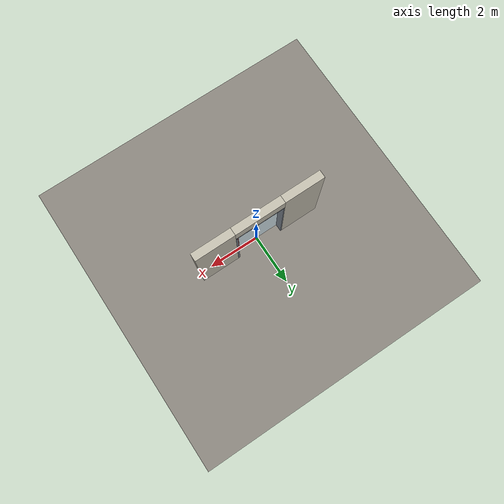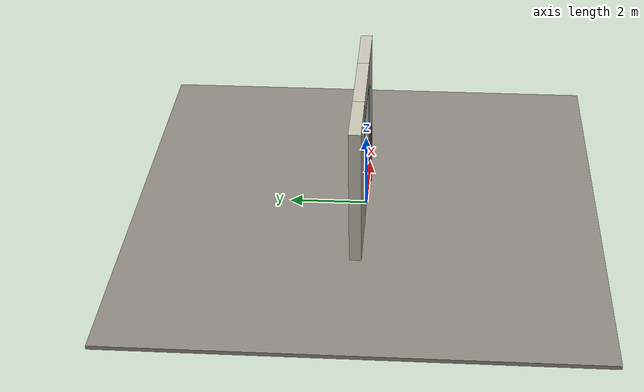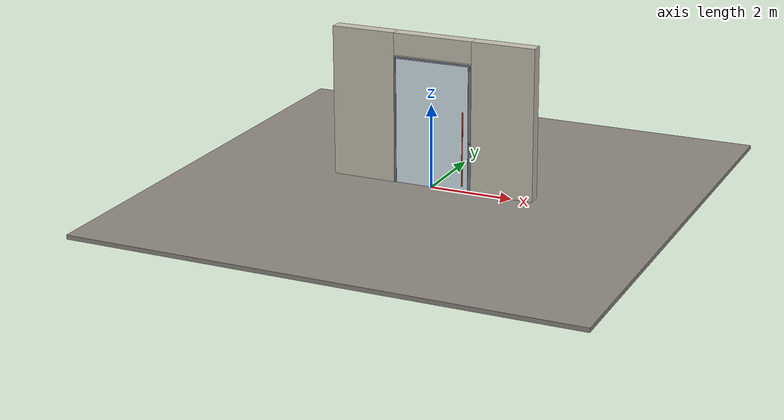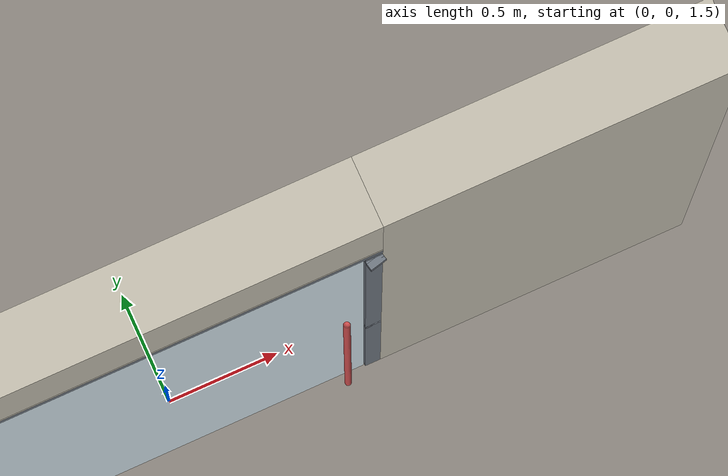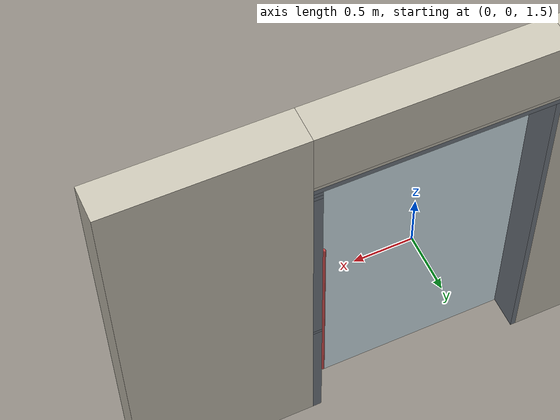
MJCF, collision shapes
<?xml version="1.0" ?>
<mujoco model="db0817_pivot_minimal">
  <compiler angle="radian" meshdir="../../hardware" texturedir="../../textures" autolimits="true" inertiafromgeom="false"/>
  <option timestep="0.002" integrator="implicitfast" cone="elliptic" impratio="10" noslip_iterations="3">
    <flag multiccd="enable"/>
  </option>
  <size memory="16M"/>
  <default>
    <geom condim="4" solref="0.005 1" solimp="0.95 0.99 0.001"/>
    <joint solreflimit="0.005 1" solimplimit="0.95 0.99 0.001"/>
    <tendon solreflimit="0.005 1"/>
    <equality solref="0.002 1"/>
  </default>
  <visual>
    <headlight ambient="0.4 0.4 0.4" diffuse="0.7 0.7 0.7" specular="0.2 0.2 0.2"/>
    <quality shadowsize="4096"/>
    <map znear="0.01" zfar="60"/>
  </visual>
  <asset>
    <mesh name="pull_897e207f65" file="pull_897e207f65.obj"/>
    <material name="mat_floor" rgba="0.55 0.53 0.5 1" specular="0.2" shininess="0.15" reflectance="0"/>
    <material name="mat_wall" rgba="0.78 0.76 0.7 1" specular="0.2" shininess="0.1" reflectance="0"/>
    <material name="mat_leaf" rgba="0.85 0.92 0.95 0.25" specular="0.2" shininess="0.95" reflectance="0.1"/>
    <material name="mat_glass_leaf" rgba="0.85 0.92 0.95 0.25" specular="0.2" shininess="0.95" reflectance="0.1"/>
    <material name="mat_patch" rgba="0.75 0.76 0.77 1" specular="0.8" shininess="0.65" reflectance="0.4"/>
    <material name="mat_hinge" rgba="0.65 0.66 0.68 1" specular="0.74" shininess="0.5" reflectance="0.36"/>
    <material name="mat_op_stainless" rgba="0.75 0.76 0.77 1" specular="0.8" shininess="0.65" reflectance="0.4"/>
    <material name="mat_bolt" rgba="0.75 0.76 0.77 1" specular="0.8" shininess="0.65" reflectance="0.4"/>
    <material name="mat_deadbolt" rgba="0.85 0.66 0.3 1" specular="0.8" shininess="0.75" reflectance="0.4"/>
    <material name="mat_frame" rgba="0.45 0.48 0.52 1" specular="0.32" shininess="0.6" reflectance="0.08"/>
    <material name="mat_closer" rgba="0.75 0.76 0.77 1" specular="0.8" shininess="0.65" reflectance="0.4"/>
    <texture name="skybox" type="skybox" builtin="gradient" rgb1="0.6 0.7 0.85" rgb2="0.9 0.92 0.95" width="256" height="256"/>
  </asset>
  <worldbody>
    <light name="sun" pos="1.5 -2.5 4" dir="-0.3 0.5 -0.8" directional="true" diffuse="0.8 0.8 0.8" specular="0.3 0.3 0.3" castshadow="true"/>
    <light name="fill" pos="-1.5 2.5 3" dir="0.3 -0.5 -0.7" directional="true" diffuse="0.35 0.35 0.4" castshadow="false"/>
    <camera name="robot_view" pos="0 -3.31175 2.47165" xyaxes="1 0 0 0 0.26963 0.962964" fovy="52"/>
    <camera name="far_view" pos="0 3.58575 2.47165" xyaxes="-1 0 0 0 -0.26963 0.962964" fovy="52"/>
    <camera name="iso" pos="2.62105 -2.75995 3.02345" xyaxes="0.741536 0.670913 0 -0.242917 0.268487 0.932151" fovy="46"/>
    <camera name="detail_handle" pos="0.975 -0.871 1.33" xyaxes="0.97561 0.219512 0 -0.070934 0.315262 0.94635" fovy="38"/>
    <geom name="floor" type="box" size="6 6 0.05" pos="0 0 -0.05" material="mat_floor" group="0" contype="1" conaffinity="1" friction="0.8 0.005 0.0001" density="2400"/>
    <geom name="wall_left" type="box" size="0.7745 0.15 1.806" pos="-1.7255 0.137 1.806" material="mat_wall" group="0" contype="1" conaffinity="1" friction="0.6 0.005 0.0001" density="800"/>
    <geom name="wall_right" type="box" size="0.7595 0.15 1.806" pos="1.7405 0.137 1.806" material="mat_wall" group="0" contype="1" conaffinity="1" friction="0.6 0.005 0.0001" density="800"/>
    <geom name="wall_header" type="box" size="0.966 0.15 0.2625" pos="0.015 0.137 3.3495" material="mat_wall" group="0" contype="1" conaffinity="1" friction="0.6 0.005 0.0001" density="800"/>
    <geom name="jamb_hinge" type="box" size="0.0225 0.15 1.506" pos="-0.9285 0.137 1.506" material="mat_frame" group="0" contype="1" conaffinity="1" friction="0.6 0.005 0.0001" density="300"/>
    <geom name="strike_1190_wall_n" type="box" size="0.0375 0.13875 0.0155" pos="0.9435 0.14825 1.19" material="mat_frame" group="0" contype="1" conaffinity="1" friction="0.6 0.005 0.0001" density="300"/>
    <geom name="strike_1190_wall_p" type="box" size="0.0157 0.003 0.0155" pos="0.9217 -0.0125 1.19" material="mat_frame" group="0" contype="1" conaffinity="1" friction="0.6 0.005 0.0001" density="300"/>
    <geom name="strike_1190_back" type="box" size="0.0228 0.0095 0.0155" pos="0.9582 0 1.19" material="mat_frame" group="0" contype="1" conaffinity="1" friction="0.6 0.005 0.0001" density="300"/>
    <geom name="strike_2958_wall_n" type="box" size="0.0375 0.13975 0.019" pos="0.9435 0.14725 2.958" material="mat_frame" group="0" contype="1" conaffinity="1" friction="0.6 0.005 0.0001" density="300"/>
    <geom name="strike_2958_wall_p" type="box" size="0.0375 0.008 0.019" pos="0.9435 -0.0155 2.958" material="mat_frame" group="0" contype="1" conaffinity="1" friction="0.6 0.005 0.0001" density="300"/>
    <geom name="strike_2958_ramp" type="box" size="0.0375 0.015403 0.019" pos="0.946019 -0.029979 2.958" quat="0.993439 0 0 0.114365" material="mat_frame" group="0" contype="1" conaffinity="1" friction="0.12 0.005 0.0001" density="300"/>
    <geom name="strike_2958_ramp_n" type="box" size="0.0375 0.015403 0.019" pos="0.946019 0.017979 2.958" quat="0.993439 0 0 -0.114365" material="mat_frame" group="0" contype="1" conaffinity="1" friction="0.12 0.005 0.0001" density="300"/>
    <geom name="strike_2958_back" type="box" size="0.0325 0.0075 0.019" pos="0.9485 0 2.958" material="mat_frame" group="0" contype="1" conaffinity="1" friction="0.6 0.005 0.0001" density="300"/>
    <geom name="jamb_strike_0" type="box" size="0.0375 0.15 0.58725" pos="0.9435 0.137 0.58725" material="mat_frame" group="0" contype="1" conaffinity="1" friction="0.6 0.005 0.0001" density="300"/>
    <geom name="jamb_strike_1" type="box" size="0.0375 0.15 0.86675" pos="0.9435 0.137 2.07225" material="mat_frame" group="0" contype="1" conaffinity="1" friction="0.6 0.005 0.0001" density="300"/>
    <geom name="jamb_strike_2" type="box" size="0.0375 0.15 0.0175" pos="0.9435 0.137 2.9945" material="mat_frame" group="0" contype="1" conaffinity="1" friction="0.6 0.005 0.0001" density="300"/>
    <geom name="jamb_head" type="box" size="0.966 0.15 0.0225" pos="0.015 0.137 3.0345" material="mat_frame" group="0" contype="1" conaffinity="1" friction="0.6 0.005 0.0001" density="300"/>
    <geom name="head_stud" type="box" size="0.966 0.15 0.015" pos="0.015 0.137 3.072" material="mat_wall" group="0" contype="1" conaffinity="1" friction="0.6 0.005 0.0001" density="500"/>
    <site name="approach_point" pos="0 -1.5 0" quat="1 0 0 0" size="0.05" rgba="0.2 0.9 0.2 0.5" group="4"/>
    <site name="goal_point" pos="0 1.5 0" quat="1 0 0 0" size="0.05" rgba="0.2 0.9 0.2 0.5" group="4"/>
    <site name="door_plane_center" pos="0 0 1.506" quat="1 0 0 0" size="0.02" rgba="0.2 0.9 0.2 0.5" group="4"/>
    <body name="leaf" pos="-0.906 0 0">
      <inertial pos="1.467009 0 1.184802" mass="170.061931" quat="0.425617 0.425617 -0.564668 0.564668" diaginertia="32.745204305 81.32283575 112.904548642"/>
      <joint name="leaf_hinge" type="hinge" axis="0 0 -1" pos="0.27 0 0" limited="true" range="0 1.570796" damping="13.6876" frictionloss="2.379631" stiffness="50.986878" springref="-2.013459" armature="0.02"/>
      <geom name="leaf_glass" type="box" size="0.9 0.006 1.5" pos="0.906 0 1.508" material="mat_glass_leaf" group="0" contype="1" conaffinity="1" friction="0.4 0.005 0.0001" density="1"/>
      <geom name="leaf_pull_n" type="mesh" mesh="pull_897e207f65" pos="1.701 -0.006 1.05" quat="0.707107 0.707107 0 0" material="mat_op_stainless" group="1" contype="0" conaffinity="0" density="3000"/>
      <geom name="leaf_pull_col_n" type="capsule" size="0.016 0.88" pos="1.701 -0.071 1.05" material="mat_op_stainless" group="3" contype="1" conaffinity="1" rgba="0.8 0.3 0.3 0.25" friction="0.7 0.01 0.0001" density="3000"/>
      <geom name="leaf_pull_p" type="mesh" mesh="pull_897e207f65" pos="1.701 0.006 1.05" quat="-0.707107 0.707107 0 0" material="mat_op_stainless" group="1" contype="0" conaffinity="0" density="3000"/>
      <geom name="leaf_pull_col_p" type="capsule" size="0.016 0.88" pos="1.701 0.071 1.05" material="mat_op_stainless" group="3" contype="1" conaffinity="1" rgba="0.8 0.3 0.3 0.25" friction="0.7 0.01 0.0001" density="3000"/>
      <site name="leaf_pull_grip_n" pos="1.701 -0.071 1.05" quat="1 0 0 0" size="0.012" rgba="0.2 0.9 0.2 0.5" group="4"/>
      <site name="leaf_pull_grip_p" pos="1.701 0.071 1.05" quat="1 0 0 0" size="0.012" rgba="0.2 0.9 0.2 0.5" group="4"/>
      <site name="leaf_edge_mid" pos="1.806 0 1.5" quat="1 0 0 0" size="0.02" rgba="0.2 0.9 0.2 0.5" group="4"/>
    </body>
  </worldbody>
  <sensor>
    <jointpos name="leaf_hinge_pos" joint="leaf_hinge"/>
    <jointvel name="leaf_hinge_vel" joint="leaf_hinge"/>
  </sensor>
</mujoco>
